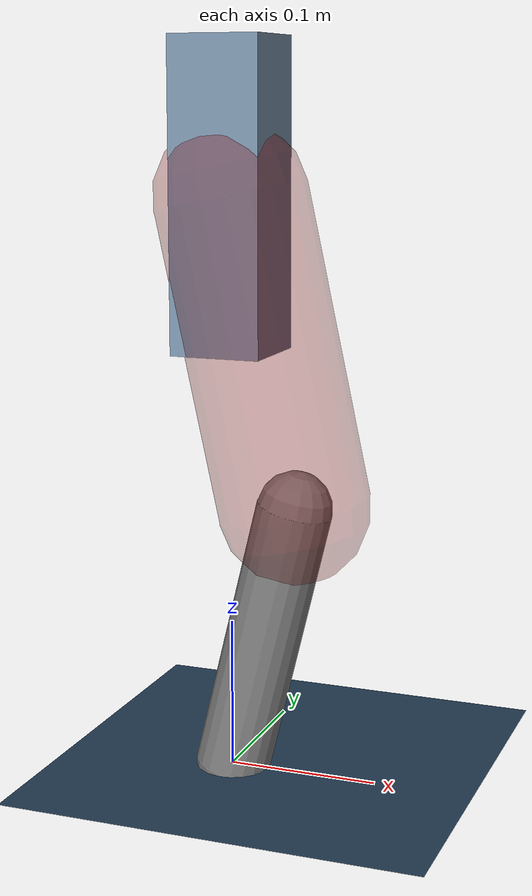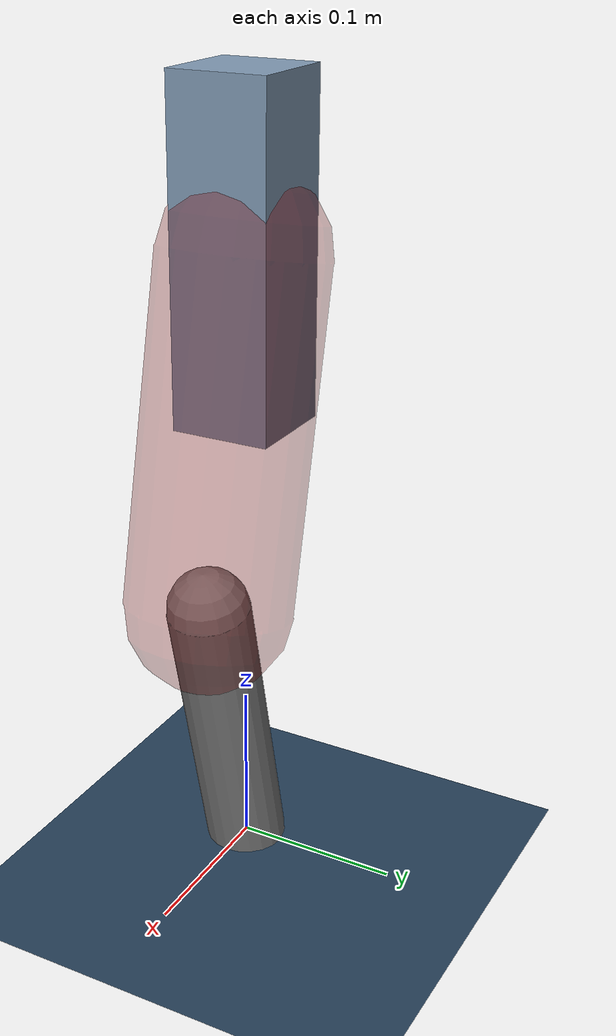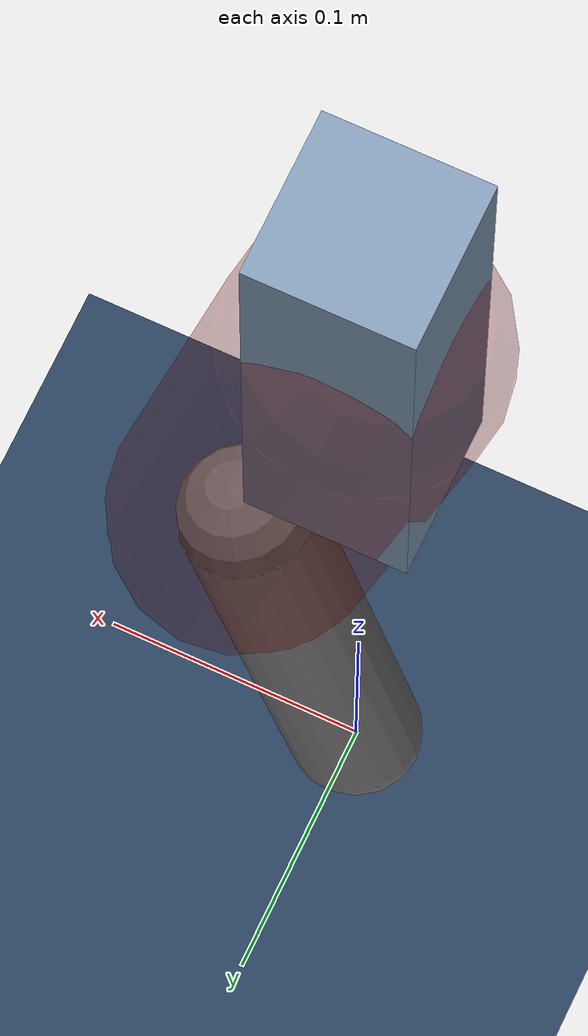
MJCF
<mujoco model="Hopper2D">
	<compiler inertiafromgeom="true" angle="radian" />
	<option timestep="0.001" integrator="implicit" cone="elliptic" solver="Newton" tolerance="1e-10" />

	<default>
		<geom contype="1" conaffinity="1" condim="3" friction="2 0.005 0.0001" solref="0.005 1" />
		<joint limited="true" damping="0.1" />
	</default>

	<asset>
		<texture name="skybox" type="skybox" builtin="gradient" rgb1=".4 .6 .8" rgb2="0 0 0" width="800" height="800" />
		<texture name="grid" type="2d" builtin="checker" rgb1=".1 .2 .3" rgb2=".2 .3 .4" width="300" height="300" mark="edge" markrgb=".2 .3 .4" />
		<material name="ground" texture="grid" texrepeat="1 1" texuniform="true" reflectance="0.1" />
		<material name="leg" rgba="0.5 0.6 0.7 1" />
	</asset>

	<worldbody>

		<geom name="floor" type="plane" size="5 5 0.25" material="ground" />

		<light directional="false" diffuse="0.8 0.8 0.8" specular="0.3 0.3 0.3" pos="0 0 2" dir="0 0 -1" />
		<light mode="targetbodycom" target="base" directional="false" diffuse="0.8 0.8 0.8" specular="0.3 0.3 0.3" pos="0 0 2" dir="0 0 -1" />

		<camera name="fixed" pos="0 -2 1" xyaxes="1 0 0 0 0 1" />
		<camera name="tracking" mode="trackcom" pos="0 -3 1" />

		<body name="root" pos="0 0 0.38238470890381004">
			<joint name="slide_x" type="slide" axis="1 0 0" range="-100 100" />
			<joint name="slide_z" type="slide" axis="0 0 1" range="0 10" />

			<body name="base" pos="0 0 0">
				<geom name="torso" type="box" size="0.03 0.03 0.1" mass="2.873" material="leg" />

				<body name="link1" pos="0 0 0" euler="0 1.3550353439623046 0">
					<joint type="hinge" axis="0 -1 0" pos="0 0 0" name="hinge1" limited="true" range="-3.14 3.14" stiffness="0" damping="0.1" />
					<geom name="thigh" type="capsule" fromto="0 0 0 0.20533413736125605 0 0" size="0.05" rgba="0.5 0 0 0.3" mass="0.7429353434031402" />

					<body name="link2" pos="0.20533413736125605 0 0" euler="0 0.4529975438059865 0">
						<joint type="hinge" axis="0 -1 0" pos="0 0 0" name="hinge2" limited="true" range="-3.14 3.14" stiffness="0" damping="0.1" />
						<geom name="shank" type="capsule" fromto="0 0 0 0.187050571542554 0 0" size="0.025" mass="0.38994045723404325" />

					</body>
				</body>
			</body>
		</body>
	</worldbody>

	<actuator>
		<motor name="torque1" joint="hinge1" ctrlrange="-108.02825161095278 108.02825161095278" ctrllimited="true" gear="1" />
		<motor name="torque2" joint="hinge2" ctrlrange="-59.3730938723135 59.3730938723135" ctrllimited="true" gear="1" />
	</actuator>
</mujoco>
